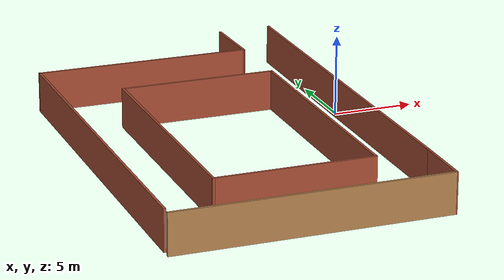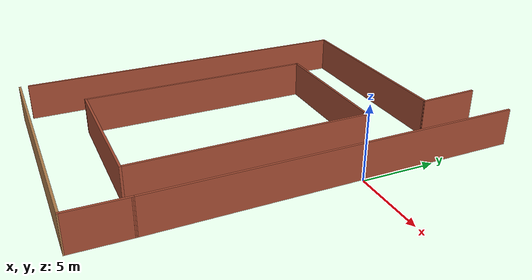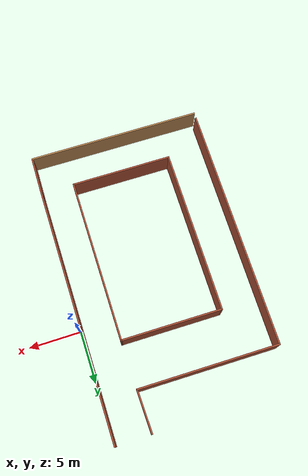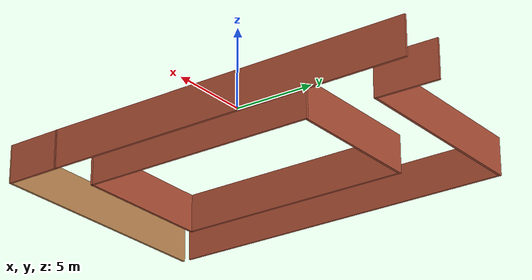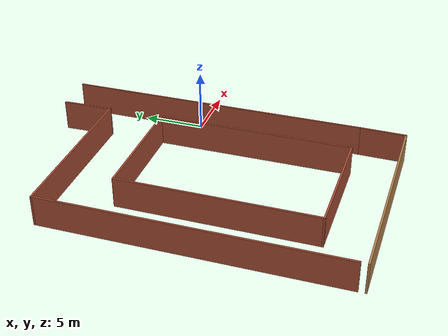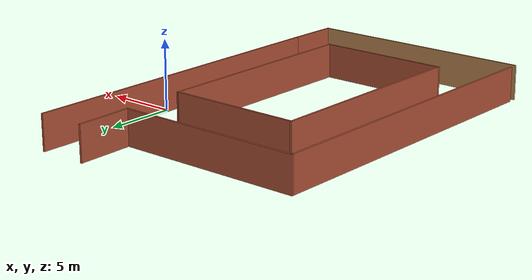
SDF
<?xml version='1.0'?>
<sdf version='1.6'>
  <model name='corridor'>
    <pose frame=''>-8.53208 -3.23332 0 0 -0 0</pose>
    <link name='Wall_12'>
      <collision name='Wall_12_Collision'>
        <geometry>
          <box>
            <size>13.5 0.15 2.5</size>
          </box>
        </geometry>
        <pose frame=''>0 0 1.25 0 -0 0</pose>
      </collision>
      <visual name='Wall_12_Visual'>
        <pose frame=''>0 0 1.25 0 -0 0</pose>
        <geometry>
          <box>
            <size>13.5 0.15 2.5</size>
          </box>
        </geometry>
        <material>
          <script>
            <uri>file://media/materials/scripts/gazebo.material</uri>
            <name>Gazebo/Bricks</name>
          </script>
          <ambient>1 1 1 1</ambient>
        </material>
        <meta>
          <layer>0</layer>
        </meta>
      </visual>
      <pose frame=''>-1.66567 10.0761 0 0 -0 0</pose>
    </link>
    <link name='Wall_13'>
      <collision name='Wall_13_Collision'>
        <geometry>
          <box>
            <size>4.14539 0.15 2.5</size>
          </box>
        </geometry>
        <pose frame=''>0 0 1.25 0 -0 0</pose>
      </collision>
      <visual name='Wall_13_Visual'>
        <pose frame=''>0 0 1.25 0 -0 0</pose>
        <geometry>
          <box>
            <size>4.14539 0.15 2.5</size>
          </box>
        </geometry>
        <material>
          <script>
            <uri>file://media/materials/scripts/gazebo.material</uri>
            <name>Gazebo/Bricks</name>
          </script>
          <ambient>1 1 1 1</ambient>
        </material>
        <meta>
          <layer>0</layer>
        </meta>
      </visual>
      <pose frame=''>5.00933 12.073 0 0 -0 1.59758</pose>
    </link>
    <link name='Wall_15'>
      <collision name='Wall_15_Collision'>
        <geometry>
          <box>
            <size>23.75 0.15 2.5</size>
          </box>
        </geometry>
        <pose frame=''>0 0 1.25 0 -0 0</pose>
      </collision>
      <visual name='Wall_15_Visual'>
        <pose frame=''>0 0 1.25 0 -0 0</pose>
        <geometry>
          <box>
            <size>23.75 0.15 2.5</size>
          </box>
        </geometry>
        <material>
          <script>
            <uri>file://media/materials/scripts/gazebo.material</uri>
            <name>Gazebo/Bricks</name>
          </script>
          <ambient>1 1 1 1</ambient>
        </material>
        <meta>
          <layer>0</layer>
        </meta>
      </visual>
      <pose frame=''>-8.34066 -1.72394 0 0 -0 -1.5708</pose>
    </link>
    <link name='Wall_17'>
      <collision name='Wall_17_Collision'>
        <geometry>
          <box>
            <size>16.75 0.15 2.5</size>
          </box>
        </geometry>
        <pose frame=''>0 0 1.25 0 -0 0</pose>
      </collision>
      <visual name='Wall_17_Visual'>
        <pose frame=''>0 0 1.25 0 -0 0</pose>
        <geometry>
          <box>
            <size>16.75 0.15 2.5</size>
          </box>
        </geometry>
        <material>
          <script>
            <uri>file://media/materials/scripts/gazebo.material</uri>
            <name>Gazebo/Wood</name>
          </script>
          <ambient>1 1 1 1</ambient>
        </material>
        <meta>
          <layer>0</layer>
        </meta>
      </visual>
      <pose frame=''>-0.021587 -14.1299 0 0 -0 0</pose>
    </link>
    <link name='Wall_18'>
      <collision name='Wall_18_Collision'>
        <geometry>
          <box>
            <size>3.81146 0.15 2.5</size>
          </box>
        </geometry>
        <pose frame=''>0 0 1.25 0 -0 0</pose>
      </collision>
      <visual name='Wall_18_Visual'>
        <pose frame=''>0 0 1.25 0 -0 0</pose>
        <geometry>
          <box>
            <size>3.81146 0.15 2.5</size>
          </box>
        </geometry>
        <material>
          <script>
            <uri>file://media/materials/scripts/gazebo.material</uri>
            <name>Gazebo/Bricks</name>
          </script>
          <ambient>1 1 1 1</ambient>
        </material>
        <meta>
          <layer>0</layer>
        </meta>
      </visual>
      <pose frame=''>8.30892 -12.2994 0 0 -0 1.55413</pose>
    </link>
    <link name='Wall_3'>
      <collision name='Wall_3_Collision'>
        <geometry>
          <box>
            <size>16 0.15 2.5</size>
          </box>
        </geometry>
        <pose frame=''>0 0 1.25 0 -0 0</pose>
      </collision>
      <visual name='Wall_3_Visual'>
        <pose frame=''>0 0 1.25 0 -0 0</pose>
        <geometry>
          <box>
            <size>16 0.15 2.5</size>
          </box>
        </geometry>
        <material>
          <script>
            <uri>file://media/materials/scripts/gazebo.material</uri>
            <name>Gazebo/Bricks</name>
          </script>
          <ambient>1 1 1 1</ambient>
        </material>
        <meta>
          <layer>0</layer>
        </meta>
      </visual>
      <pose frame=''>-4.44767 -2.4369 0 0 -0 1.5708</pose>
    </link>
    <link name='Wall_4'>
      <collision name='Wall_4_Collision'>
        <geometry>
          <box>
            <size>9.75 0.15 2.5</size>
          </box>
        </geometry>
        <pose frame=''>0 0 1.25 0 -0 0</pose>
      </collision>
      <visual name='Wall_4_Visual'>
        <pose frame=''>0 0 1.25 0 -0 0</pose>
        <geometry>
          <box>
            <size>9.75 0.15 2.5</size>
          </box>
        </geometry>
        <material>
          <script>
            <uri>file://media/materials/scripts/gazebo.material</uri>
            <name>Gazebo/Bricks</name>
          </script>
          <ambient>1 1 1 1</ambient>
        </material>
        <meta>
          <layer>0</layer>
        </meta>
      </visual>
      <pose frame=''>0.352329 5.4881 0 0 -0 0</pose>
    </link>
    <link name='Wall_5'>
      <collision name='Wall_5_Collision'>
        <geometry>
          <box>
            <size>16 0.15 2.5</size>
          </box>
        </geometry>
        <pose frame=''>0 0 1.25 0 -0 0</pose>
      </collision>
      <visual name='Wall_5_Visual'>
        <pose frame=''>0 0 1.25 0 -0 0</pose>
        <geometry>
          <box>
            <size>16 0.15 2.5</size>
          </box>
        </geometry>
        <material>
          <script>
            <uri>file://media/materials/scripts/gazebo.material</uri>
            <name>Gazebo/Bricks</name>
          </script>
          <ambient>1 1 1 1</ambient>
        </material>
        <meta>
          <layer>0</layer>
        </meta>
      </visual>
      <pose frame=''>5.15233 -2.4369 0 0 -0 -1.5708</pose>
    </link>
    <link name='Wall_6'>
      <collision name='Wall_6_Collision'>
        <geometry>
          <box>
            <size>9.75 0.15 2.5</size>
          </box>
        </geometry>
        <pose frame=''>0 0 1.25 0 -0 0</pose>
      </collision>
      <visual name='Wall_6_Visual'>
        <pose frame=''>0 0 1.25 0 -0 0</pose>
        <geometry>
          <box>
            <size>9.75 0.15 2.5</size>
          </box>
        </geometry>
        <material>
          <script>
            <uri>file://media/materials/scripts/gazebo.material</uri>
            <name>Gazebo/Bricks</name>
          </script>
          <ambient>1 1 1 1</ambient>
        </material>
        <meta>
          <layer>0</layer>
        </meta>
      </visual>
      <pose frame=''>0.352329 -10.3619 0 0 -0 3.14159</pose>
    </link>
    <link name='Wall_9'>
      <collision name='Wall_9_Collision'>
        <geometry>
          <box>
            <size>24.75 0.15 2.5</size>
          </box>
        </geometry>
        <pose frame=''>0 0 1.25 0 -0 0</pose>
      </collision>
      <visual name='Wall_9_Visual'>
        <pose frame=''>0 0 1.25 0 -0 0</pose>
        <geometry>
          <box>
            <size>24.75 0.15 2.5</size>
          </box>
        </geometry>
        <material>
          <script>
            <uri>file://media/materials/scripts/gazebo.material</uri>
            <name>Gazebo/Bricks</name>
          </script>
          <ambient>1 1 1 1</ambient>
        </material>
        <meta>
          <layer>0</layer>
        </meta>
      </visual>
      <pose frame=''>8.33943 1.8311 0 0 -0 1.5708</pose>
    </link>
    <static>1</static>
  </model>
</sdf>
